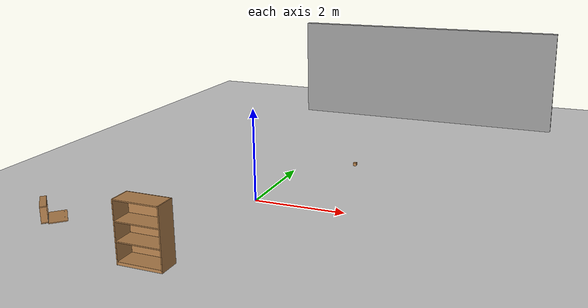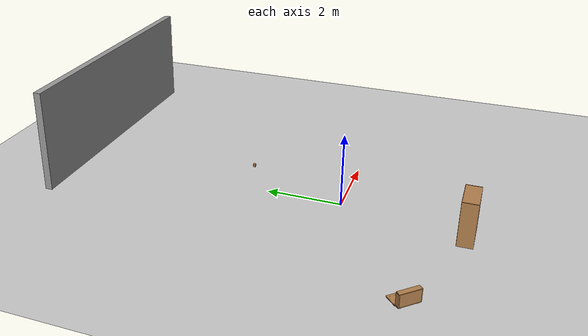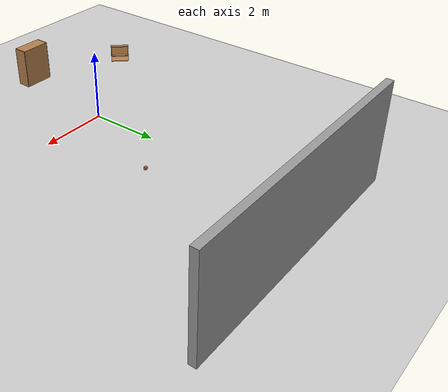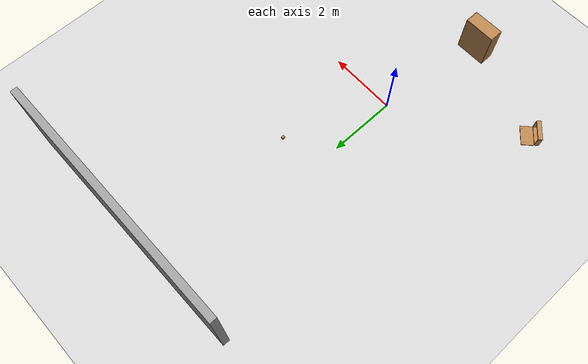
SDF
<sdf version="1.7">
 <world name="default">
  <light name="sun" type="directional">
   <pose>0 0 10 0 -0 0</pose>
   <diffuse>0.8 0.8 0.8 1</diffuse>
   <specular>0.2 0.2 0.2 1</specular>
   <attenuation>
    <range>1000</range>
    <constant>0.9</constant>
    <linear>0.01</linear>
    <quadratic>0.001</quadratic>
   </attenuation>
   <direction>-0.5 0.1 -0.9</direction>
   <spot><inner_angle>0</inner_angle><outer_angle>0</outer_angle><falloff>0</falloff></spot>
  </light>
  <model name="ground_plane">
   <static>1</static>
   <link name="link">
    <collision name="collision">
     <geometry><plane><normal>0 0 1</normal><size>100 100</size></plane></geometry>
     <surface><friction><ode><mu>100</mu><mu2>50</mu2></ode></friction></surface>
    </collision>
    <visual name="visual">
     <cast_shadows>0</cast_shadows>
     <geometry><plane><normal>0 0 1</normal><size>100 100</size></plane></geometry>
     <material>
      <script><uri>file://media/materials/scripts/gazebo.material</uri><name>Gazebo/Grey</name></script>
     </material>
    </visual>
   </link>
  </model>
  <gravity>0 0 -9.8</gravity>
  <magnetic_field>6e-06 2.3e-05 -4.2e-05</magnetic_field>
  <atmosphere type="adiabatic"/>
  <physics type="ode">
   <max_step_size>0.001</max_step_size>
   <real_time_factor>1</real_time_factor>
   <real_time_update_rate>1000</real_time_update_rate>
  </physics>
  <scene><ambient>0.4 0.4 0.4 1</ambient><background>0.7 0.7 0.7 1</background><shadows>1</shadows></scene>
  <audio><device>default</device></audio>
  <spherical_coordinates>
   <surface_model>EARTH_WGS84</surface_model>
   <latitude_deg>0</latitude_deg>
   <longitude_deg>0</longitude_deg>
   <elevation>0</elevation>
   <heading_deg>0</heading_deg>
  </spherical_coordinates>
  <model name="wood_cube_7_5cm">
   <link name="link">
    <pose>0 0 0.0375 0 -0 0</pose>
    <inertial>
     <mass>0.2249</mass>
     <inertia>
      <ixx>0.000210844</ixx>
      <ixy>0</ixy>
      <ixz>0</ixz>
      <iyy>0.000210844</iyy>
      <iyz>0</iyz>
      <izz>0.000210844</izz>
     </inertia>
    </inertial>
    <collision name="collision">
     <geometry><box><size>0.075 0.075 0.075</size></box></geometry>
     <surface>
      <contact>
       <poissons_ratio>0.347</poissons_ratio>
       <elastic_modulus>8.8e+09</elastic_modulus>
       <ode><kp>100000</kp><kd>100</kd><max_vel>100</max_vel><min_depth>0.001</min_depth></ode>
      </contact>
      <friction>
       <torsional>
        <coefficient>1</coefficient>
        <use_patch_radius>0</use_patch_radius>
        <surface_radius>0.01</surface_radius>
       </torsional>
      </friction>
     </surface>
    </collision>
    <visual name="visual">
     <geometry><box><size>0.075 0.075 0.075</size></box></geometry>
     <material>
      <script><uri>file://media/materials/scripts/gazebo.material</uri><name>Gazebo/Wood</name></script>
     </material>
    </visual>
   </link>
   <pose>1.24073 2.85849 -0.001005 0 -0 0</pose>
  </model>
  <model name="wooden_case">
   <link name="base">
    <pose>0 0 0.024 0 -0 0</pose>
    <inertial>
     <pose>-0.022184 0 0.171592 0 -0 0</pose>
     <mass>3.96264</mass>
     <inertia>
      <ixx>0.213536</ixx>
      <ixy>0</ixy>
      <ixz>0.000779377</ixz>
      <iyy>0.0708943</iyy>
      <iyz>0</iyz>
      <izz>0.154604</izz>
     </inertia>
    </inertial>
    <collision name="collision_back">
     <pose>-0.053975 0 0.1778 0 -0 0</pose>
     <geometry><box><size>0.01905 0.5461 0.3175</size></box></geometry>
     <surface>
      <contact>
       <poissons_ratio>0.347</poissons_ratio>
       <elastic_modulus>8.8e+09</elastic_modulus>
       <ode><kp>100000</kp><kd>100</kd><max_vel>100</max_vel><min_depth>0.001</min_depth></ode>
      </contact>
      <friction>
       <torsional>
        <coefficient>1</coefficient>
        <use_patch_radius>0</use_patch_radius>
        <surface_radius>0.01</surface_radius>
       </torsional>
      </friction>
     </surface>
    </collision>
    <visual name="visual_back">
     <pose>-0.053975 0 0.1778 0 -0 0</pose>
     <geometry><box><size>0.01905 0.5461 0.3175</size></box></geometry>
     <material>
      <script><uri>file://media/materials/scripts/gazebo.material</uri><name>Gazebo/Wood</name></script>
     </material>
    </visual>
    <collision name="collision_bottom">
     <pose>0 0 0.009525 0 -0 0</pose>
     <geometry><box><size>0.127 0.5842 0.01905</size></box></geometry>
     <surface>
      <contact>
       <poissons_ratio>0.347</poissons_ratio>
       <elastic_modulus>8.8e+09</elastic_modulus>
       <ode><kp>100000</kp><kd>100</kd><max_vel>100</max_vel><min_depth>0.001</min_depth></ode>
      </contact>
      <friction>
       <torsional>
        <coefficient>1</coefficient>
        <use_patch_radius>0</use_patch_radius>
        <surface_radius>0.01</surface_radius>
       </torsional>
      </friction>
     </surface>
    </collision>
    <visual name="visual_bottom">
     <pose>0 0 0.009525 0 -0 0</pose>
     <geometry><box><size>0.127 0.5842 0.01905</size></box></geometry>
     <material>
      <script><uri>file://media/materials/scripts/gazebo.material</uri><name>Gazebo/Wood</name></script>
     </material>
    </visual>
    <collision name="collision_top">
     <pose>0 0 0.346075 0 -0 0</pose>
     <geometry><box><size>0.127 0.5842 0.01905</size></box></geometry>
     <surface>
      <contact>
       <poissons_ratio>0.347</poissons_ratio>
       <elastic_modulus>8.8e+09</elastic_modulus>
       <ode><kp>100000</kp><kd>100</kd><max_vel>100</max_vel><min_depth>0.001</min_depth></ode>
      </contact>
      <friction>
       <torsional>
        <coefficient>1</coefficient>
        <use_patch_radius>0</use_patch_radius>
        <surface_radius>0.01</surface_radius>
       </torsional>
      </friction>
     </surface>
    </collision>
    <visual name="visual_top">
     <pose>0 0 0.346075 0 -0 0</pose>
     <geometry><box><size>0.127 0.5842 0.01905</size></box></geometry>
     <material>
      <script><uri>file://media/materials/scripts/gazebo.material</uri><name>Gazebo/Wood</name></script>
     </material>
    </visual>
    <collision name="collision_left">
     <pose>0 -0.282575 0.1778 0 -0 0</pose>
     <geometry><box><size>0.127 0.01905 0.3175</size></box></geometry>
     <surface>
      <contact>
       <poissons_ratio>0.347</poissons_ratio>
       <elastic_modulus>8.8e+09</elastic_modulus>
       <ode><kp>100000</kp><kd>100</kd><max_vel>100</max_vel><min_depth>0.001</min_depth></ode>
      </contact>
      <friction>
       <torsional>
        <coefficient>1</coefficient>
        <use_patch_radius>0</use_patch_radius>
        <surface_radius>0.01</surface_radius>
       </torsional>
      </friction>
     </surface>
    </collision>
    <visual name="visual_left">
     <pose>0 -0.282575 0.1778 0 -0 0</pose>
     <geometry><box><size>0.127 0.01905 0.3175</size></box></geometry>
     <material>
      <script><uri>file://media/materials/scripts/gazebo.material</uri><name>Gazebo/Wood</name></script>
     </material>
    </visual>
    <collision name="collision_right">
     <pose>0 0.282575 0.1778 0 -0 0</pose>
     <geometry><box><size>0.127 0.01905 0.3175</size></box></geometry>
     <surface>
      <contact>
       <poissons_ratio>0.347</poissons_ratio>
       <elastic_modulus>8.8e+09</elastic_modulus>
       <ode><kp>100000</kp><kd>100</kd><max_vel>100</max_vel><min_depth>0.001</min_depth></ode>
      </contact>
      <friction>
       <torsional>
        <coefficient>1</coefficient>
        <use_patch_radius>0</use_patch_radius>
        <surface_radius>0.01</surface_radius>
       </torsional>
      </friction>
     </surface>
    </collision>
    <visual name="visual_right">
     <pose>0 0.282575 0.1778 0 -0 0</pose>
     <geometry><box><size>0.127 0.01905 0.3175</size></box></geometry>
     <material>
      <script><uri>file://media/materials/scripts/gazebo.material</uri><name>Gazebo/Wood</name></script>
     </material>
    </visual>
    <collision name="collision_block_left">
     <pose>0.0095 -0.2151 -0.012 0 -0 0</pose>
     <geometry><box><size>0.108 0.05 0.024</size></box></geometry>
     <surface>
      <contact>
       <poissons_ratio>0.347</poissons_ratio>
       <elastic_modulus>8.8e+09</elastic_modulus>
       <ode><kp>100000</kp><kd>100</kd><max_vel>100</max_vel><min_depth>0.001</min_depth></ode>
      </contact>
      <friction>
       <torsional>
        <coefficient>1</coefficient>
        <use_patch_radius>0</use_patch_radius>
        <surface_radius>0.01</surface_radius>
       </torsional>
      </friction>
     </surface>
    </collision>
    <visual name="visual_block_left">
     <pose>0.0095 -0.2151 -0.012 0 -0 0</pose>
     <geometry><box><size>0.108 0.05 0.024</size></box></geometry>
     <material>
      <script><uri>file://media/materials/scripts/gazebo.material</uri><name>Gazebo/Wood</name></script>
     </material>
    </visual>
    <collision name="collision_block_right">
     <pose>0.0095 0.2151 -0.012 0 -0 0</pose>
     <geometry><box><size>0.108 0.05 0.024</size></box></geometry>
     <surface>
      <contact>
       <poissons_ratio>0.347</poissons_ratio>
       <elastic_modulus>8.8e+09</elastic_modulus>
       <ode><kp>100000</kp><kd>100</kd><max_vel>100</max_vel><min_depth>0.001</min_depth></ode>
      </contact>
      <friction>
       <torsional>
        <coefficient>1</coefficient>
        <use_patch_radius>0</use_patch_radius>
        <surface_radius>0.01</surface_radius>
       </torsional>
      </friction>
     </surface>
    </collision>
    <visual name="visual_block_right">
     <pose>0.0095 0.2151 -0.012 0 -0 0</pose>
     <geometry><box><size>0.108 0.05 0.024</size></box></geometry>
     <material>
      <script><uri>file://media/materials/scripts/gazebo.material</uri><name>Gazebo/Wood</name></script>
     </material>
    </visual>
   </link>
   <link name="lid">
    <pose>0.243775 0 0.009525 0 -0 0</pose>
    <inertial>
     <mass>1.97874</mass>
     <inertia>
      <ixx>0.0563367</ixx>
      <ixy>0</ixy>
      <ixz>0</ixz>
      <iyy>0.020911</iyy>
      <iyz>0</iyz>
      <izz>0.0771281</izz>
     </inertia>
    </inertial>
    <collision name="collision">
     <geometry><box><size>0.3556 0.5842 0.01905</size></box></geometry>
     <surface>
      <contact>
       <poissons_ratio>0.347</poissons_ratio>
       <elastic_modulus>8.8e+09</elastic_modulus>
       <ode><kp>100000</kp><kd>100</kd><max_vel>100</max_vel><min_depth>0.001</min_depth></ode>
      </contact>
      <friction>
       <torsional>
        <coefficient>1</coefficient>
        <use_patch_radius>0</use_patch_radius>
        <surface_radius>0.01</surface_radius>
       </torsional>
      </friction>
     </surface>
    </collision>
    <visual name="visual">
     <geometry><box><size>0.3556 0.5842 0.01905</size></box></geometry>
     <material>
      <script><uri>file://media/materials/scripts/gazebo.material</uri><name>Gazebo/Wood</name></script>
     </material>
    </visual>
    <visual name="tee_nut_1">
     <pose>0.122 -0.216 0 0 -0 0</pose>
     <geometry><cylinder><radius>0.00635</radius><length>0.0192405</length></cylinder></geometry>
     <material>
      <script><uri>file://media/materials/scripts/gazebo.material</uri><name>Gazebo/Grey</name></script>
     </material>
    </visual>
    <visual name="tee_nut_2">
     <pose>0.122 -0.088 0 0 -0 0</pose>
     <geometry><cylinder><radius>0.00635</radius><length>0.0192405</length></cylinder></geometry>
     <material>
      <script><uri>file://media/materials/scripts/gazebo.material</uri><name>Gazebo/Grey</name></script>
     </material>
    </visual>
    <visual name="tee_nut_3">
     <pose>0.122 0.088 0 0 -0 0</pose>
     <geometry><cylinder><radius>0.00635</radius><length>0.0192405</length></cylinder></geometry>
     <material>
      <script><uri>file://media/materials/scripts/gazebo.material</uri><name>Gazebo/Grey</name></script>
     </material>
    </visual>
    <visual name="tee_nut_4">
     <pose>0.122 0.216 0 0 -0 0</pose>
     <geometry><cylinder><radius>0.00635</radius><length>0.0192405</length></cylinder></geometry>
     <material>
      <script><uri>file://media/materials/scripts/gazebo.material</uri><name>Gazebo/Grey</name></script>
     </material>
    </visual>
   </link>
   <joint name="lid_hinge" type="revolute">
    <pose>-0.1778 0 0.01905 0 -0 0</pose>
    <parent>base</parent>
    <child>lid</child>
    <axis>
     <xyz>0 1 0</xyz>
     <limit><upper>0.523599</upper><lower>-1.5708</lower></limit>
     <dynamics><spring_reference>0</spring_reference><spring_stiffness>0</spring_stiffness></dynamics>
    </axis>
   </joint>
   <pose>-3.48132 -2.3403 -0.001057 0 -0.00043 0.754553</pose>
  </model>
  <model name="grey_wall">
   <static>1</static>
   <link name="link">
    <pose>0 0 1.4 0 -0 0</pose>
    <collision name="collision"><geometry><box><size>7.5 0.2 2.8</size></box></geometry></collision>
    <visual name="visual">
     <cast_shadows>0</cast_shadows>
     <geometry><box><size>7.5 0.2 2.8</size></box></geometry>
     <material>
      <script>
       <uri>model://grey_wall/materials/scripts</uri>
       <uri>model://grey_wall/materials/textures</uri>
       <name>vrc/grey_wall</name>
      </script>
     </material>
    </visual>
   </link>
   <pose>1.78087 7.62368 0 0 -0 0</pose>
  </model>
  <model name="bookshelf">
   <static>1</static>
   <link name="link">
    <inertial><mass>1</mass></inertial>
    <collision name="back">
     <pose>0 0.005 0.6 0 -0 0</pose>
     <geometry><box><size>0.9 0.01 1.2</size></box></geometry>
    </collision>
    <visual name="visual1">
     <pose>0 0.005 0.6 0 -0 0</pose>
     <geometry><box><size>0.9 0.01 1.2</size></box></geometry>
     <material>
      <script><uri>file://media/materials/scripts/gazebo.material</uri><name>Gazebo/Wood</name></script>
     </material>
    </visual>
    <collision name="left_side">
     <pose>0.45 -0.195 0.6 0 -0 0</pose>
     <geometry><box><size>0.02 0.4 1.2</size></box></geometry>
    </collision>
    <visual name="visual2">
     <pose>0.45 -0.195 0.6 0 -0 0</pose>
     <geometry><box><size>0.02 0.4 1.2</size></box></geometry>
     <material>
      <script><uri>file://media/materials/scripts/gazebo.material</uri><name>Gazebo/Wood</name></script>
     </material>
    </visual>
    <collision name="right_side">
     <pose>-0.45 -0.195 0.6 0 -0 0</pose>
     <geometry><box><size>0.02 0.4 1.2</size></box></geometry>
    </collision>
    <visual name="visual3">
     <pose>-0.45 -0.195 0.6 0 -0 0</pose>
     <geometry><box><size>0.02 0.4 1.2</size></box></geometry>
     <material>
      <script><uri>file://media/materials/scripts/gazebo.material</uri><name>Gazebo/Wood</name></script>
     </material>
    </visual>
    <collision name="bottom">
     <pose>0 -0.195 0.03 0 -0 0</pose>
     <geometry><box><size>0.88 0.4 0.06</size></box></geometry>
    </collision>
    <visual name="visual4">
     <pose>0 -0.195 0.03 0 -0 0</pose>
     <geometry><box><size>0.88 0.4 0.06</size></box></geometry>
     <material>
      <script><uri>file://media/materials/scripts/gazebo.material</uri><name>Gazebo/Wood</name></script>
     </material>
    </visual>
    <collision name="top">
     <pose>0 -0.195 1.19 0 -0 0</pose>
     <geometry><box><size>0.88 0.4 0.02</size></box></geometry>
    </collision>
    <visual name="visual5">
     <pose>0 -0.195 1.19 0 -0 0</pose>
     <geometry><box><size>0.88 0.4 0.02</size></box></geometry>
     <material>
      <script><uri>file://media/materials/scripts/gazebo.material</uri><name>Gazebo/Wood</name></script>
     </material>
    </visual>
    <collision name="low_shelf">
     <pose>0 -0.195 0.43 0 -0 0</pose>
     <geometry><box><size>0.88 0.4 0.02</size></box></geometry>
    </collision>
    <visual name="visual6">
     <pose>0 -0.195 0.43 0 -0 0</pose>
     <geometry><box><size>0.88 0.4 0.02</size></box></geometry>
     <material>
      <script><uri>file://media/materials/scripts/gazebo.material</uri><name>Gazebo/Wood</name></script>
     </material>
    </visual>
    <collision name="high_shelf">
     <pose>0 -0.195 0.8 0 -0 0</pose>
     <geometry><box><size>0.88 0.4 0.02</size></box></geometry>
    </collision>
    <visual name="visual7">
     <pose>0 -0.195 0.8 0 -0 0</pose>
     <geometry><box><size>0.88 0.4 0.02</size></box></geometry>
     <material>
      <script><uri>file://media/materials/scripts/gazebo.material</uri><name>Gazebo/Wood</name></script>
     </material>
    </visual>
   </link>
   <pose>-0.43397 -3.03411 0 0 -0 0</pose>
  </model>
 </world>
</sdf>
